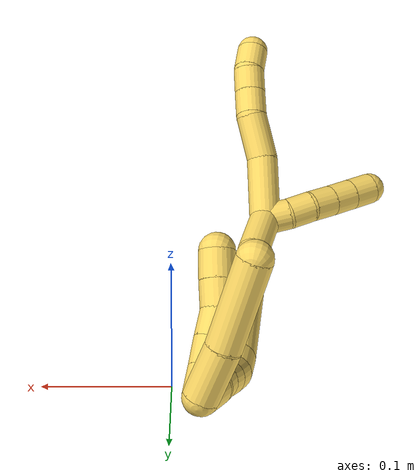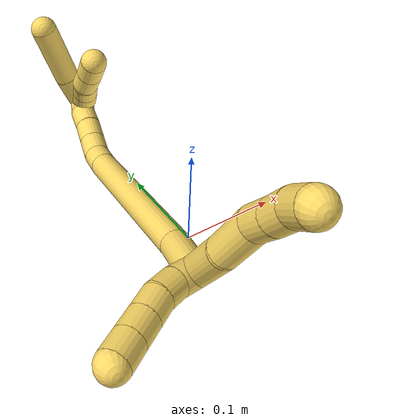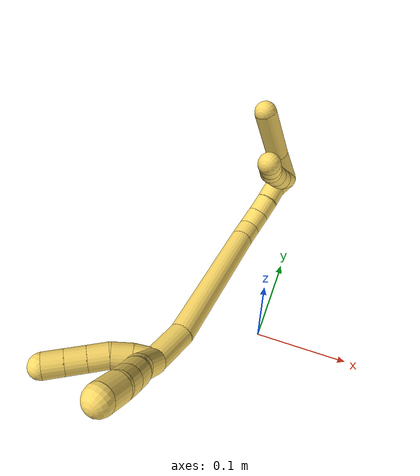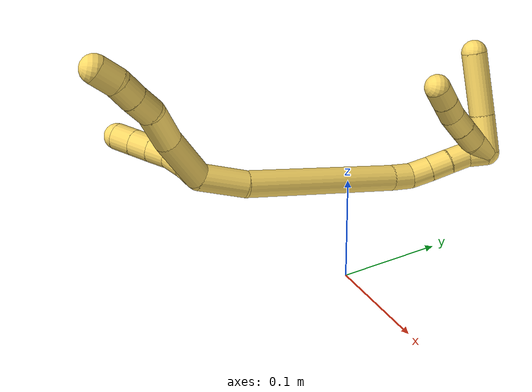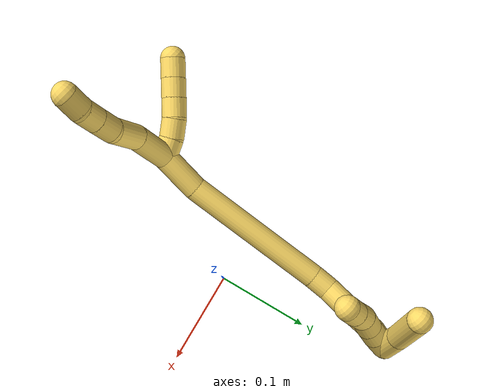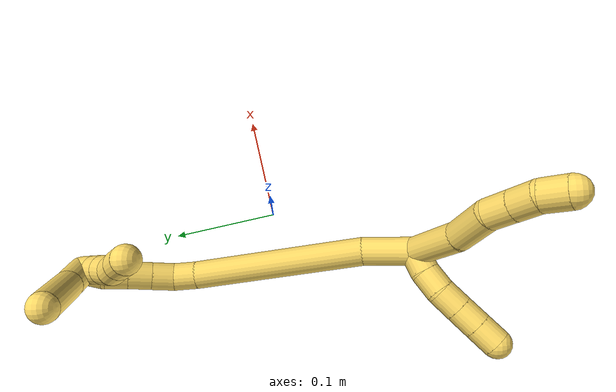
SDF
<sdf version="1.7">
 <world name="default">
  <model name="5">
   <static>0</static>
   <link name="5">
    <collision name="collision-cylinder-e_1_2_8">
     <pose>-0.016226 0.005915 0.018624 -0.307511 -0.692985 0.111796</pose>
     <geometry><cylinder><radius>0.0125</radius><length>0.050798</length></cylinder></geometry>
     <surface>
      <friction><ode><mu>1.16</mu><mu2>1.16</mu2><slip1>0</slip1><slip2>0</slip2></ode></friction>
      <contact><ode><kp>1e+06</kp><kd>1</kd><max_vel>0</max_vel><min_depth>0.001</min_depth></ode></contact>
     </surface>
    </collision>
    <visual name="visual-cylinder-e_1_2_8">
     <pose>-0.016226 0.005915 0.018624 -0.307511 -0.692985 0.111796</pose>
     <geometry><cylinder><radius>0.0125</radius><length>0.050798</length></cylinder></geometry>
     <material><ambient>1 0.858824 0.4 1</ambient></material>
    </visual>
    <collision name="collision-cylinder-e_2_8_9">
     <pose>-0.045039 0.019481 0.04834 -0.603842 -0.751377 0.244454</pose>
     <geometry><cylinder><radius>0.0125</radius><length>0.03688</length></cylinder></geometry>
     <surface>
      <friction><ode><mu>1.16</mu><mu2>1.16</mu2><slip1>0</slip1><slip2>0</slip2></ode></friction>
      <contact><ode><kp>1e+06</kp><kd>1</kd><max_vel>0</max_vel><min_depth>0.001</min_depth></ode></contact>
     </surface>
    </collision>
    <visual name="visual-cylinder-e_2_8_9">
     <pose>-0.045039 0.019481 0.04834 -0.603842 -0.751377 0.244454</pose>
     <geometry><cylinder><radius>0.0125</radius><length>0.03688</length></cylinder></geometry>
     <material><ambient>1 0.858824 0.4 1</ambient></material>
    </visual>
    <collision name="collision-cylinder-e_3_9_10">
     <pose>-0.063111 0.029819 0.06822 -0.296701 -0.537959 0.082347</pose>
     <geometry><cylinder><radius>0.0125</radius><length>0.021403</length></cylinder></geometry>
     <surface>
      <friction><ode><mu>1.16</mu><mu2>1.16</mu2><slip1>0</slip1><slip2>0</slip2></ode></friction>
      <contact><ode><kp>1e+06</kp><kd>1</kd><max_vel>0</max_vel><min_depth>0.001</min_depth></ode></contact>
     </surface>
    </collision>
    <visual name="visual-cylinder-e_3_9_10">
     <pose>-0.063111 0.029819 0.06822 -0.296701 -0.537959 0.082347</pose>
     <geometry><cylinder><radius>0.0125</radius><length>0.021403</length></cylinder></geometry>
     <material><ambient>1 0.858824 0.4 1</ambient></material>
    </visual>
    <collision name="collision-cylinder-e_4_10_11">
     <pose>-0.074265 0.034955 0.084964 -0.298643 -0.598118 0.092697</pose>
     <geometry><cylinder><radius>0.0125</radius><length>0.020144</length></cylinder></geometry>
     <surface>
      <friction><ode><mu>1.16</mu><mu2>1.16</mu2><slip1>0</slip1><slip2>0</slip2></ode></friction>
      <contact><ode><kp>1e+06</kp><kd>1</kd><max_vel>0</max_vel><min_depth>0.001</min_depth></ode></contact>
     </surface>
    </collision>
    <visual name="visual-cylinder-e_4_10_11">
     <pose>-0.074265 0.034955 0.084964 -0.298643 -0.598118 0.092697</pose>
     <geometry><cylinder><radius>0.0125</radius><length>0.020144</length></cylinder></geometry>
     <material><ambient>1 0.858824 0.4 1</ambient></material>
    </visual>
    <collision name="collision-cylinder-e_5_11_6">
     <pose>-0.083907 0.037995 0.102499 -0.061692 -0.392211 0.012259</pose>
     <geometry><cylinder><radius>0.0125</radius><length>0.020775</length></cylinder></geometry>
     <surface>
      <friction><ode><mu>1.16</mu><mu2>1.16</mu2><slip1>0</slip1><slip2>0</slip2></ode></friction>
      <contact><ode><kp>1e+06</kp><kd>1</kd><max_vel>0</max_vel><min_depth>0.001</min_depth></ode></contact>
     </surface>
    </collision>
    <visual name="visual-cylinder-e_5_11_6">
     <pose>-0.083907 0.037995 0.102499 -0.061692 -0.392211 0.012259</pose>
     <geometry><cylinder><radius>0.0125</radius><length>0.020775</length></cylinder></geometry>
     <material><ambient>1 0.858824 0.4 1</ambient></material>
    </visual>
    <collision name="collision-cylinder-e_1_2_12">
     <pose>-0.001819 -0.008919 0.00414 1.13619 -0.182903 -0.116938</pose>
     <geometry><cylinder><radius>0.0125</radius><length>0.02</length></cylinder></geometry>
     <surface>
      <friction><ode><mu>1.16</mu><mu2>1.16</mu2><slip1>0</slip1><slip2>0</slip2></ode></friction>
      <contact><ode><kp>1e+06</kp><kd>1</kd><max_vel>0</max_vel><min_depth>0.001</min_depth></ode></contact>
     </surface>
    </collision>
    <visual name="visual-cylinder-e_1_2_12">
     <pose>-0.001819 -0.008919 0.00414 1.13619 -0.182903 -0.116938</pose>
     <geometry><cylinder><radius>0.0125</radius><length>0.02</length></cylinder></geometry>
     <material><ambient>1 0.858824 0.4 1</ambient></material>
    </visual>
    <collision name="collision-cylinder-e_2_12_13">
     <pose>-0.005026 -0.025827 0.014133 0.938491 -0.139309 -0.070717</pose>
     <geometry><cylinder><radius>0.0125</radius><length>0.02</length></cylinder></geometry>
     <surface>
      <friction><ode><mu>1.16</mu><mu2>1.16</mu2><slip1>0</slip1><slip2>0</slip2></ode></friction>
      <contact><ode><kp>1e+06</kp><kd>1</kd><max_vel>0</max_vel><min_depth>0.001</min_depth></ode></contact>
     </surface>
    </collision>
    <visual name="visual-cylinder-e_2_12_13">
     <pose>-0.005026 -0.025827 0.014133 0.938491 -0.139309 -0.070717</pose>
     <geometry><cylinder><radius>0.0125</radius><length>0.02</length></cylinder></geometry>
     <material><ambient>1 0.858824 0.4 1</ambient></material>
    </visual>
    <collision name="collision-cylinder-e_3_13_14">
     <pose>-0.006117 -0.041066 0.026867 0.811586 0.029814 0.01281</pose>
     <geometry><cylinder><radius>0.0125</radius><length>0.02</length></cylinder></geometry>
     <surface>
      <friction><ode><mu>1.16</mu><mu2>1.16</mu2><slip1>0</slip1><slip2>0</slip2></ode></friction>
      <contact><ode><kp>1e+06</kp><kd>1</kd><max_vel>0</max_vel><min_depth>0.001</min_depth></ode></contact>
     </surface>
    </collision>
    <visual name="visual-cylinder-e_3_13_14">
     <pose>-0.006117 -0.041066 0.026867 0.811586 0.029814 0.01281</pose>
     <geometry><cylinder><radius>0.0125</radius><length>0.02</length></cylinder></geometry>
     <material><ambient>1 0.858824 0.4 1</ambient></material>
    </visual>
    <collision name="collision-cylinder-e_4_14_15">
     <pose>-0.005711 -0.055502 0.040701 0.801757 0.010771 0.004565</pose>
     <geometry><cylinder><radius>0.0125</radius><length>0.02</length></cylinder></geometry>
     <surface>
      <friction><ode><mu>1.16</mu><mu2>1.16</mu2><slip1>0</slip1><slip2>0</slip2></ode></friction>
      <contact><ode><kp>1e+06</kp><kd>1</kd><max_vel>0</max_vel><min_depth>0.001</min_depth></ode></contact>
     </surface>
    </collision>
    <visual name="visual-cylinder-e_4_14_15">
     <pose>-0.005711 -0.055502 0.040701 0.801757 0.010771 0.004565</pose>
     <geometry><cylinder><radius>0.0125</radius><length>0.02</length></cylinder></geometry>
     <material><ambient>1 0.858824 0.4 1</ambient></material>
    </visual>
    <collision name="collision-cylinder-e_5_15_5">
     <pose>-0.005488 -0.069852 0.05463 0.798789 0.011549 0.004874</pose>
     <geometry><cylinder><radius>0.0125</radius><length>0.02</length></cylinder></geometry>
     <surface>
      <friction><ode><mu>1.16</mu><mu2>1.16</mu2><slip1>0</slip1><slip2>0</slip2></ode></friction>
      <contact><ode><kp>1e+06</kp><kd>1</kd><max_vel>0</max_vel><min_depth>0.001</min_depth></ode></contact>
     </surface>
    </collision>
    <visual name="visual-cylinder-e_5_15_5">
     <pose>-0.005488 -0.069852 0.05463 0.798789 0.011549 0.004874</pose>
     <geometry><cylinder><radius>0.0125</radius><length>0.02</length></cylinder></geometry>
     <material><ambient>1 0.858824 0.4 1</ambient></material>
    </visual>
    <collision name="collision-cylinder-e_1_2_16">
     <pose>0.000295 0.000847 -0.02223 -3.10351 0.013258 -0.670016</pose>
     <geometry><cylinder><radius>0.0125</radius><length>0.044496</length></cylinder></geometry>
     <surface>
      <friction><ode><mu>1.16</mu><mu2>1.16</mu2><slip1>0</slip1><slip2>0</slip2></ode></friction>
      <contact><ode><kp>1e+06</kp><kd>1</kd><max_vel>0</max_vel><min_depth>0.001</min_depth></ode></contact>
     </surface>
    </collision>
    <visual name="visual-cylinder-e_1_2_16">
     <pose>0.000295 0.000847 -0.02223 -3.10351 0.013258 -0.670016</pose>
     <geometry><cylinder><radius>0.0125</radius><length>0.044496</length></cylinder></geometry>
     <material><ambient>1 0.858824 0.4 1</ambient></material>
    </visual>
    <collision name="collision-cylinder-e_2_16_17">
     <pose>-0.009654 -0.005755 -0.119571 3.04274 -0.134896 -1.87749</pose>
     <geometry><cylinder><radius>0.0125</radius><length>0.152343</length></cylinder></geometry>
     <surface>
      <friction><ode><mu>1.16</mu><mu2>1.16</mu2><slip1>0</slip1><slip2>0</slip2></ode></friction>
      <contact><ode><kp>1e+06</kp><kd>1</kd><max_vel>0</max_vel><min_depth>0.001</min_depth></ode></contact>
     </surface>
    </collision>
    <visual name="visual-cylinder-e_2_16_17">
     <pose>-0.009654 -0.005755 -0.119571 3.04274 -0.134896 -1.87749</pose>
     <geometry><cylinder><radius>0.0125</radius><length>0.152343</length></cylinder></geometry>
     <material><ambient>1 0.858824 0.4 1</ambient></material>
    </visual>
    <collision name="collision-cylinder-e_3_17_18">
     <pose>-0.022081 -0.013611 -0.205005 3.10217 -0.208241 -2.76866</pose>
     <geometry><cylinder><radius>0.0125</radius><length>0.02112</length></cylinder></geometry>
     <surface>
      <friction><ode><mu>1.16</mu><mu2>1.16</mu2><slip1>0</slip1><slip2>0</slip2></ode></friction>
      <contact><ode><kp>1e+06</kp><kd>1</kd><max_vel>0</max_vel><min_depth>0.001</min_depth></ode></contact>
     </surface>
    </collision>
    <visual name="visual-cylinder-e_3_17_18">
     <pose>-0.022081 -0.013611 -0.205005 3.10217 -0.208241 -2.76866</pose>
     <geometry><cylinder><radius>0.0125</radius><length>0.02112</length></cylinder></geometry>
     <material><ambient>1 0.858824 0.4 1</ambient></material>
    </visual>
    <collision name="collision-cylinder-e_4_18_19">
     <pose>-0.029395 -0.012941 -0.224282 -3.02184 -0.517285 2.69595</pose>
     <geometry><cylinder><radius>0.0125</radius><length>0.020749</length></cylinder></geometry>
     <surface>
      <friction><ode><mu>1.16</mu><mu2>1.16</mu2><slip1>0</slip1><slip2>0</slip2></ode></friction>
      <contact><ode><kp>1e+06</kp><kd>1</kd><max_vel>0</max_vel><min_depth>0.001</min_depth></ode></contact>
     </surface>
    </collision>
    <visual name="visual-cylinder-e_4_18_19">
     <pose>-0.029395 -0.012941 -0.224282 -3.02184 -0.517285 2.69595</pose>
     <geometry><cylinder><radius>0.0125</radius><length>0.020749</length></cylinder></geometry>
     <material><ambient>1 0.858824 0.4 1</ambient></material>
    </visual>
    <collision name="collision-cylinder-e_5_19_20">
     <pose>-0.040144 -0.010694 -0.242014 -3.00908 -0.565275 2.69234</pose>
     <geometry><cylinder><radius>0.0125</radius><length>0.020978</length></cylinder></geometry>
     <surface>
      <friction><ode><mu>1.16</mu><mu2>1.16</mu2><slip1>0</slip1><slip2>0</slip2></ode></friction>
      <contact><ode><kp>1e+06</kp><kd>1</kd><max_vel>0</max_vel><min_depth>0.001</min_depth></ode></contact>
     </surface>
    </collision>
    <visual name="visual-cylinder-e_5_19_20">
     <pose>-0.040144 -0.010694 -0.242014 -3.00908 -0.565275 2.69234</pose>
     <geometry><cylinder><radius>0.0125</radius><length>0.020978</length></cylinder></geometry>
     <material><ambient>1 0.858824 0.4 1</ambient></material>
    </visual>
    <collision name="collision-cylinder-e_6_20_21">
     <pose>-0.050782 -0.009011 -0.259469 -3.08265 -0.523793 2.92253</pose>
     <geometry><cylinder><radius>0.0125</radius><length>0.020072</length></cylinder></geometry>
     <surface>
      <friction><ode><mu>1.16</mu><mu2>1.16</mu2><slip1>0</slip1><slip2>0</slip2></ode></friction>
      <contact><ode><kp>1e+06</kp><kd>1</kd><max_vel>0</max_vel><min_depth>0.001</min_depth></ode></contact>
     </surface>
    </collision>
    <visual name="visual-cylinder-e_6_20_21">
     <pose>-0.050782 -0.009011 -0.259469 -3.08265 -0.523793 2.92253</pose>
     <geometry><cylinder><radius>0.0125</radius><length>0.020072</length></cylinder></geometry>
     <material><ambient>1 0.858824 0.4 1</ambient></material>
    </visual>
    <collision name="collision-cylinder-e_7_21_1">
     <pose>-0.059049 -0.005781 -0.277337 -2.85402 -0.326664 1.69991</pose>
     <geometry><cylinder><radius>0.0125</radius><length>0.020242</length></cylinder></geometry>
     <surface>
      <friction><ode><mu>1.16</mu><mu2>1.16</mu2><slip1>0</slip1><slip2>0</slip2></ode></friction>
      <contact><ode><kp>1e+06</kp><kd>1</kd><max_vel>0</max_vel><min_depth>0.001</min_depth></ode></contact>
     </surface>
    </collision>
    <visual name="visual-cylinder-e_7_21_1">
     <pose>-0.059049 -0.005781 -0.277337 -2.85402 -0.326664 1.69991</pose>
     <geometry><cylinder><radius>0.0125</radius><length>0.020242</length></cylinder></geometry>
     <material><ambient>1 0.858824 0.4 1</ambient></material>
    </visual>
    <collision name="collision-cylinder-e_1_1_22">
     <pose>-0.066276 -0.00279 -0.277359 -0.029631 -0.40925 0.00615</pose>
     <geometry><cylinder><radius>0.0125</radius><length>0.02</length></cylinder></geometry>
     <surface>
      <friction><ode><mu>1.16</mu><mu2>1.16</mu2><slip1>0</slip1><slip2>0</slip2></ode></friction>
      <contact><ode><kp>1e+06</kp><kd>1</kd><max_vel>0</max_vel><min_depth>0.001</min_depth></ode></contact>
     </surface>
    </collision>
    <visual name="visual-cylinder-e_1_1_22">
     <pose>-0.066276 -0.00279 -0.277359 -0.029631 -0.40925 0.00615</pose>
     <geometry><cylinder><radius>0.0125</radius><length>0.02</length></cylinder></geometry>
     <material><ambient>1 0.858824 0.4 1</ambient></material>
    </visual>
    <collision name="collision-cylinder-e_2_22_23">
     <pose>-0.075921 -0.002322 -0.259951 -0.023849 -0.602276 0.007407</pose>
     <geometry><cylinder><radius>0.0125</radius><length>0.02</length></cylinder></geometry>
     <surface>
      <friction><ode><mu>1.16</mu><mu2>1.16</mu2><slip1>0</slip1><slip2>0</slip2></ode></friction>
      <contact><ode><kp>1e+06</kp><kd>1</kd><max_vel>0</max_vel><min_depth>0.001</min_depth></ode></contact>
     </surface>
    </collision>
    <visual name="visual-cylinder-e_2_22_23">
     <pose>-0.075921 -0.002322 -0.259951 -0.023849 -0.602276 0.007407</pose>
     <geometry><cylinder><radius>0.0125</radius><length>0.02</length></cylinder></geometry>
     <material><ambient>1 0.858824 0.4 1</ambient></material>
    </visual>
    <collision name="collision-cylinder-e_3_23_24">
     <pose>-0.087398 -0.002249 -0.243576 0.015282 -0.620207 -0.004897</pose>
     <geometry><cylinder><radius>0.0125</radius><length>0.02</length></cylinder></geometry>
     <surface>
      <friction><ode><mu>1.16</mu><mu2>1.16</mu2><slip1>0</slip1><slip2>0</slip2></ode></friction>
      <contact><ode><kp>1e+06</kp><kd>1</kd><max_vel>0</max_vel><min_depth>0.001</min_depth></ode></contact>
     </surface>
    </collision>
    <visual name="visual-cylinder-e_3_23_24">
     <pose>-0.087398 -0.002249 -0.243576 0.015282 -0.620207 -0.004897</pose>
     <geometry><cylinder><radius>0.0125</radius><length>0.02</length></cylinder></geometry>
     <material><ambient>1 0.858824 0.4 1</ambient></material>
    </visual>
    <collision name="collision-cylinder-e_4_24_25">
     <pose>-0.099515 0.00011 -0.228086 -0.325708 -0.682215 0.116522</pose>
     <geometry><cylinder><radius>0.0125</radius><length>0.02</length></cylinder></geometry>
     <surface>
      <friction><ode><mu>1.16</mu><mu2>1.16</mu2><slip1>0</slip1><slip2>0</slip2></ode></friction>
      <contact><ode><kp>1e+06</kp><kd>1</kd><max_vel>0</max_vel><min_depth>0.001</min_depth></ode></contact>
     </surface>
    </collision>
    <visual name="visual-cylinder-e_4_24_25">
     <pose>-0.099515 0.00011 -0.228086 -0.325708 -0.682215 0.116522</pose>
     <geometry><cylinder><radius>0.0125</radius><length>0.02</length></cylinder></geometry>
     <material><ambient>1 0.858824 0.4 1</ambient></material>
    </visual>
    <collision name="collision-cylinder-e_5_25_4">
     <pose>-0.112245 0.004695 -0.213363 -0.277789 -0.697731 0.101611</pose>
     <geometry><cylinder><radius>0.0125</radius><length>0.02</length></cylinder></geometry>
     <surface>
      <friction><ode><mu>1.16</mu><mu2>1.16</mu2><slip1>0</slip1><slip2>0</slip2></ode></friction>
      <contact><ode><kp>1e+06</kp><kd>1</kd><max_vel>0</max_vel><min_depth>0.001</min_depth></ode></contact>
     </surface>
    </collision>
    <visual name="visual-cylinder-e_5_25_4">
     <pose>-0.112245 0.004695 -0.213363 -0.277789 -0.697731 0.101611</pose>
     <geometry><cylinder><radius>0.0125</radius><length>0.02</length></cylinder></geometry>
     <material><ambient>1 0.858824 0.4 1</ambient></material>
    </visual>
    <collision name="collision-cylinder-e_1_1_26">
     <pose>-0.079726 -0.008015 -0.280934 0.72465 -1.16578 -0.489799</pose>
     <geometry><cylinder><radius>0.0125</radius><length>0.037927</length></cylinder></geometry>
     <surface>
      <friction><ode><mu>1.16</mu><mu2>1.16</mu2><slip1>0</slip1><slip2>0</slip2></ode></friction>
      <contact><ode><kp>1e+06</kp><kd>1</kd><max_vel>0</max_vel><min_depth>0.001</min_depth></ode></contact>
     </surface>
    </collision>
    <visual name="visual-cylinder-e_1_1_26">
     <pose>-0.079726 -0.008015 -0.280934 0.72465 -1.16578 -0.489799</pose>
     <geometry><cylinder><radius>0.0125</radius><length>0.037927</length></cylinder></geometry>
     <material><ambient>1 0.858824 0.4 1</ambient></material>
    </visual>
    <collision name="collision-cylinder-e_2_26_3">
     <pose>-0.125655 -0.018545 -0.264388 0.471042 -1.16366 -0.313122</pose>
     <geometry><cylinder><radius>0.0125</radius><length>0.062073</length></cylinder></geometry>
     <surface>
      <friction><ode><mu>1.16</mu><mu2>1.16</mu2><slip1>0</slip1><slip2>0</slip2></ode></friction>
      <contact><ode><kp>1e+06</kp><kd>1</kd><max_vel>0</max_vel><min_depth>0.001</min_depth></ode></contact>
     </surface>
    </collision>
    <visual name="visual-cylinder-e_2_26_3">
     <pose>-0.125655 -0.018545 -0.264388 0.471042 -1.16366 -0.313122</pose>
     <geometry><cylinder><radius>0.0125</radius><length>0.062073</length></cylinder></geometry>
     <material><ambient>1 0.858824 0.4 1</ambient></material>
    </visual>
    <collision name="collision-sphere-3">
     <pose>-0.154155 -0.024123 -0.253437 0 -0 0</pose>
     <geometry><sphere><radius>0.0125</radius></sphere></geometry>
     <surface>
      <friction><ode><mu>1.16</mu><mu2>1.16</mu2><slip1>0</slip1><slip2>0</slip2></ode></friction>
      <contact><ode><kp>1e+06</kp><kd>1</kd><max_vel>0</max_vel><min_depth>0.001</min_depth></ode></contact>
     </surface>
    </collision>
    <visual name="visual-sphere-3">
     <pose>-0.154155 -0.024123 -0.253437 0 -0 0</pose>
     <geometry><sphere><radius>0.0125</radius></sphere></geometry>
     <material><ambient>1 0.858824 0.4 1</ambient></material>
    </visual>
    <collision name="collision-sphere-26">
     <pose>-0.097156 -0.012968 -0.27534 0 -0 0</pose>
     <geometry><sphere><radius>0.0125</radius></sphere></geometry>
     <surface>
      <friction><ode><mu>1.16</mu><mu2>1.16</mu2><slip1>0</slip1><slip2>0</slip2></ode></friction>
      <contact><ode><kp>1e+06</kp><kd>1</kd><max_vel>0</max_vel><min_depth>0.001</min_depth></ode></contact>
     </surface>
    </collision>
    <visual name="visual-sphere-26">
     <pose>-0.097156 -0.012968 -0.27534 0 -0 0</pose>
     <geometry><sphere><radius>0.0125</radius></sphere></geometry>
     <material><ambient>1 0.858824 0.4 1</ambient></material>
    </visual>
    <collision name="collision-sphere-4">
     <pose>-0.11867 0.006796 -0.205993 0 -0 0</pose>
     <geometry><sphere><radius>0.0125</radius></sphere></geometry>
     <surface>
      <friction><ode><mu>1.16</mu><mu2>1.16</mu2><slip1>0</slip1><slip2>0</slip2></ode></friction>
      <contact><ode><kp>1e+06</kp><kd>1</kd><max_vel>0</max_vel><min_depth>0.001</min_depth></ode></contact>
     </surface>
    </collision>
    <visual name="visual-sphere-4">
     <pose>-0.11867 0.006796 -0.205993 0 -0 0</pose>
     <geometry><sphere><radius>0.0125</radius></sphere></geometry>
     <material><ambient>1 0.858824 0.4 1</ambient></material>
    </visual>
    <collision name="collision-sphere-25">
     <pose>-0.10582 0.002593 -0.220732 0 -0 0</pose>
     <geometry><sphere><radius>0.0125</radius></sphere></geometry>
     <surface>
      <friction><ode><mu>1.16</mu><mu2>1.16</mu2><slip1>0</slip1><slip2>0</slip2></ode></friction>
      <contact><ode><kp>1e+06</kp><kd>1</kd><max_vel>0</max_vel><min_depth>0.001</min_depth></ode></contact>
     </surface>
    </collision>
    <visual name="visual-sphere-25">
     <pose>-0.10582 0.002593 -0.220732 0 -0 0</pose>
     <geometry><sphere><radius>0.0125</radius></sphere></geometry>
     <material><ambient>1 0.858824 0.4 1</ambient></material>
    </visual>
    <collision name="collision-sphere-24">
     <pose>-0.09321 -0.002374 -0.235439 0 -0 0</pose>
     <geometry><sphere><radius>0.0125</radius></sphere></geometry>
     <surface>
      <friction><ode><mu>1.16</mu><mu2>1.16</mu2><slip1>0</slip1><slip2>0</slip2></ode></friction>
      <contact><ode><kp>1e+06</kp><kd>1</kd><max_vel>0</max_vel><min_depth>0.001</min_depth></ode></contact>
     </surface>
    </collision>
    <visual name="visual-sphere-24">
     <pose>-0.09321 -0.002374 -0.235439 0 -0 0</pose>
     <geometry><sphere><radius>0.0125</radius></sphere></geometry>
     <material><ambient>1 0.858824 0.4 1</ambient></material>
    </visual>
    <collision name="collision-sphere-23">
     <pose>-0.081586 -0.002125 -0.251713 0 -0 0</pose>
     <geometry><sphere><radius>0.0125</radius></sphere></geometry>
     <surface>
      <friction><ode><mu>1.16</mu><mu2>1.16</mu2><slip1>0</slip1><slip2>0</slip2></ode></friction>
      <contact><ode><kp>1e+06</kp><kd>1</kd><max_vel>0</max_vel><min_depth>0.001</min_depth></ode></contact>
     </surface>
    </collision>
    <visual name="visual-sphere-23">
     <pose>-0.081586 -0.002125 -0.251713 0 -0 0</pose>
     <geometry><sphere><radius>0.0125</radius></sphere></geometry>
     <material><ambient>1 0.858824 0.4 1</ambient></material>
    </visual>
    <collision name="collision-sphere-22">
     <pose>-0.070255 -0.002518 -0.268189 0 -0 0</pose>
     <geometry><sphere><radius>0.0125</radius></sphere></geometry>
     <surface>
      <friction><ode><mu>1.16</mu><mu2>1.16</mu2><slip1>0</slip1><slip2>0</slip2></ode></friction>
      <contact><ode><kp>1e+06</kp><kd>1</kd><max_vel>0</max_vel><min_depth>0.001</min_depth></ode></contact>
     </surface>
    </collision>
    <visual name="visual-sphere-22">
     <pose>-0.070255 -0.002518 -0.268189 0 -0 0</pose>
     <geometry><sphere><radius>0.0125</radius></sphere></geometry>
     <material><ambient>1 0.858824 0.4 1</ambient></material>
    </visual>
    <collision name="collision-sphere-1">
     <pose>-0.062297 -0.003062 -0.286529 0 -0 0</pose>
     <geometry><sphere><radius>0.0125</radius></sphere></geometry>
     <surface>
      <friction><ode><mu>1.16</mu><mu2>1.16</mu2><slip1>0</slip1><slip2>0</slip2></ode></friction>
      <contact><ode><kp>1e+06</kp><kd>1</kd><max_vel>0</max_vel><min_depth>0.001</min_depth></ode></contact>
     </surface>
    </collision>
    <visual name="visual-sphere-1">
     <pose>-0.062297 -0.003062 -0.286529 0 -0 0</pose>
     <geometry><sphere><radius>0.0125</radius></sphere></geometry>
     <material><ambient>1 0.858824 0.4 1</ambient></material>
    </visual>
    <collision name="collision-sphere-21">
     <pose>-0.055801 -0.008499 -0.268144 0 -0 0</pose>
     <geometry><sphere><radius>0.0125</radius></sphere></geometry>
     <surface>
      <friction><ode><mu>1.16</mu><mu2>1.16</mu2><slip1>0</slip1><slip2>0</slip2></ode></friction>
      <contact><ode><kp>1e+06</kp><kd>1</kd><max_vel>0</max_vel><min_depth>0.001</min_depth></ode></contact>
     </surface>
    </collision>
    <visual name="visual-sphere-21">
     <pose>-0.055801 -0.008499 -0.268144 0 -0 0</pose>
     <geometry><sphere><radius>0.0125</radius></sphere></geometry>
     <material><ambient>1 0.858824 0.4 1</ambient></material>
    </visual>
    <collision name="collision-sphere-6">
     <pose>-0.087878 0.038587 0.11208 0 -0 0</pose>
     <geometry><sphere><radius>0.0125</radius></sphere></geometry>
     <surface>
      <friction><ode><mu>1.16</mu><mu2>1.16</mu2><slip1>0</slip1><slip2>0</slip2></ode></friction>
      <contact><ode><kp>1e+06</kp><kd>1</kd><max_vel>0</max_vel><min_depth>0.001</min_depth></ode></contact>
     </surface>
    </collision>
    <visual name="visual-sphere-6">
     <pose>-0.087878 0.038587 0.11208 0 -0 0</pose>
     <geometry><sphere><radius>0.0125</radius></sphere></geometry>
     <material><ambient>1 0.858824 0.4 1</ambient></material>
    </visual>
    <collision name="collision-sphere-11">
     <pose>-0.079937 0.037403 0.092919 0 -0 0</pose>
     <geometry><sphere><radius>0.0125</radius></sphere></geometry>
     <surface>
      <friction><ode><mu>1.16</mu><mu2>1.16</mu2><slip1>0</slip1><slip2>0</slip2></ode></friction>
      <contact><ode><kp>1e+06</kp><kd>1</kd><max_vel>0</max_vel><min_depth>0.001</min_depth></ode></contact>
     </surface>
    </collision>
    <visual name="visual-sphere-11">
     <pose>-0.079937 0.037403 0.092919 0 -0 0</pose>
     <geometry><sphere><radius>0.0125</radius></sphere></geometry>
     <material><ambient>1 0.858824 0.4 1</ambient></material>
    </visual>
    <collision name="collision-sphere-10">
     <pose>-0.068594 0.032506 0.077009 0 -0 0</pose>
     <geometry><sphere><radius>0.0125</radius></sphere></geometry>
     <surface>
      <friction><ode><mu>1.16</mu><mu2>1.16</mu2><slip1>0</slip1><slip2>0</slip2></ode></friction>
      <contact><ode><kp>1e+06</kp><kd>1</kd><max_vel>0</max_vel><min_depth>0.001</min_depth></ode></contact>
     </surface>
    </collision>
    <visual name="visual-sphere-10">
     <pose>-0.068594 0.032506 0.077009 0 -0 0</pose>
     <geometry><sphere><radius>0.0125</radius></sphere></geometry>
     <material><ambient>1 0.858824 0.4 1</ambient></material>
    </visual>
    <collision name="collision-sphere-9">
     <pose>-0.057628 0.027132 0.059432 0 -0 0</pose>
     <geometry><sphere><radius>0.0125</radius></sphere></geometry>
     <surface>
      <friction><ode><mu>1.16</mu><mu2>1.16</mu2><slip1>0</slip1><slip2>0</slip2></ode></friction>
      <contact><ode><kp>1e+06</kp><kd>1</kd><max_vel>0</max_vel><min_depth>0.001</min_depth></ode></contact>
     </surface>
    </collision>
    <visual name="visual-sphere-9">
     <pose>-0.057628 0.027132 0.059432 0 -0 0</pose>
     <geometry><sphere><radius>0.0125</radius></sphere></geometry>
     <material><ambient>1 0.858824 0.4 1</ambient></material>
    </visual>
    <collision name="collision-sphere-2">
     <geometry><sphere><radius>0.0125</radius></sphere></geometry>
     <surface>
      <friction><ode><mu>1.16</mu><mu2>1.16</mu2><slip1>0</slip1><slip2>0</slip2></ode></friction>
      <contact><ode><kp>1e+06</kp><kd>1</kd><max_vel>0</max_vel><min_depth>0.001</min_depth></ode></contact>
     </surface>
    </collision>
    <visual name="visual-sphere-2">
     <geometry><sphere><radius>0.0125</radius></sphere></geometry>
     <material><ambient>1 0.858824 0.4 1</ambient></material>
    </visual>
    <collision name="collision-sphere-19">
     <pose>-0.034525 -0.011864 -0.233234 0 -0 0</pose>
     <geometry><sphere><radius>0.0125</radius></sphere></geometry>
     <surface>
      <friction><ode><mu>1.16</mu><mu2>1.16</mu2><slip1>0</slip1><slip2>0</slip2></ode></friction>
      <contact><ode><kp>1e+06</kp><kd>1</kd><max_vel>0</max_vel><min_depth>0.001</min_depth></ode></contact>
     </surface>
    </collision>
    <visual name="visual-sphere-19">
     <pose>-0.034525 -0.011864 -0.233234 0 -0 0</pose>
     <geometry><sphere><radius>0.0125</radius></sphere></geometry>
     <material><ambient>1 0.858824 0.4 1</ambient></material>
    </visual>
    <collision name="collision-sphere-8">
     <pose>-0.032451 0.011829 0.037247 0 -0 0</pose>
     <geometry><sphere><radius>0.0125</radius></sphere></geometry>
     <surface>
      <friction><ode><mu>1.16</mu><mu2>1.16</mu2><slip1>0</slip1><slip2>0</slip2></ode></friction>
      <contact><ode><kp>1e+06</kp><kd>1</kd><max_vel>0</max_vel><min_depth>0.001</min_depth></ode></contact>
     </surface>
    </collision>
    <visual name="visual-sphere-8">
     <pose>-0.032451 0.011829 0.037247 0 -0 0</pose>
     <geometry><sphere><radius>0.0125</radius></sphere></geometry>
     <material><ambient>1 0.858824 0.4 1</ambient></material>
    </visual>
    <collision name="collision-sphere-12">
     <pose>-0.003638 -0.017838 0.008281 0 -0 0</pose>
     <geometry><sphere><radius>0.0125</radius></sphere></geometry>
     <surface>
      <friction><ode><mu>1.16</mu><mu2>1.16</mu2><slip1>0</slip1><slip2>0</slip2></ode></friction>
      <contact><ode><kp>1e+06</kp><kd>1</kd><max_vel>0</max_vel><min_depth>0.001</min_depth></ode></contact>
     </surface>
    </collision>
    <visual name="visual-sphere-12">
     <pose>-0.003638 -0.017838 0.008281 0 -0 0</pose>
     <geometry><sphere><radius>0.0125</radius></sphere></geometry>
     <material><ambient>1 0.858824 0.4 1</ambient></material>
    </visual>
    <collision name="collision-sphere-13">
     <pose>-0.006415 -0.033815 0.019986 0 -0 0</pose>
     <geometry><sphere><radius>0.0125</radius></sphere></geometry>
     <surface>
      <friction><ode><mu>1.16</mu><mu2>1.16</mu2><slip1>0</slip1><slip2>0</slip2></ode></friction>
      <contact><ode><kp>1e+06</kp><kd>1</kd><max_vel>0</max_vel><min_depth>0.001</min_depth></ode></contact>
     </surface>
    </collision>
    <visual name="visual-sphere-13">
     <pose>-0.006415 -0.033815 0.019986 0 -0 0</pose>
     <geometry><sphere><radius>0.0125</radius></sphere></geometry>
     <material><ambient>1 0.858824 0.4 1</ambient></material>
    </visual>
    <collision name="collision-sphere-14">
     <pose>-0.005819 -0.048316 0.033747 0 -0 0</pose>
     <geometry><sphere><radius>0.0125</radius></sphere></geometry>
     <surface>
      <friction><ode><mu>1.16</mu><mu2>1.16</mu2><slip1>0</slip1><slip2>0</slip2></ode></friction>
      <contact><ode><kp>1e+06</kp><kd>1</kd><max_vel>0</max_vel><min_depth>0.001</min_depth></ode></contact>
     </surface>
    </collision>
    <visual name="visual-sphere-14">
     <pose>-0.005819 -0.048316 0.033747 0 -0 0</pose>
     <geometry><sphere><radius>0.0125</radius></sphere></geometry>
     <material><ambient>1 0.858824 0.4 1</ambient></material>
    </visual>
    <collision name="collision-sphere-15">
     <pose>-0.005603 -0.062687 0.047655 0 -0 0</pose>
     <geometry><sphere><radius>0.0125</radius></sphere></geometry>
     <surface>
      <friction><ode><mu>1.16</mu><mu2>1.16</mu2><slip1>0</slip1><slip2>0</slip2></ode></friction>
      <contact><ode><kp>1e+06</kp><kd>1</kd><max_vel>0</max_vel><min_depth>0.001</min_depth></ode></contact>
     </surface>
    </collision>
    <visual name="visual-sphere-15">
     <pose>-0.005603 -0.062687 0.047655 0 -0 0</pose>
     <geometry><sphere><radius>0.0125</radius></sphere></geometry>
     <material><ambient>1 0.858824 0.4 1</ambient></material>
    </visual>
    <collision name="collision-sphere-5">
     <pose>-0.005372 -0.077016 0.061606 0 -0 0</pose>
     <geometry><sphere><radius>0.0125</radius></sphere></geometry>
     <surface>
      <friction><ode><mu>1.16</mu><mu2>1.16</mu2><slip1>0</slip1><slip2>0</slip2></ode></friction>
      <contact><ode><kp>1e+06</kp><kd>1</kd><max_vel>0</max_vel><min_depth>0.001</min_depth></ode></contact>
     </surface>
    </collision>
    <visual name="visual-sphere-5">
     <pose>-0.005372 -0.077016 0.061606 0 -0 0</pose>
     <geometry><sphere><radius>0.0125</radius></sphere></geometry>
     <material><ambient>1 0.858824 0.4 1</ambient></material>
    </visual>
    <collision name="collision-sphere-16">
     <pose>0.00059 0.001694 -0.04446 0 -0 0</pose>
     <geometry><sphere><radius>0.0125</radius></sphere></geometry>
     <surface>
      <friction><ode><mu>1.16</mu><mu2>1.16</mu2><slip1>0</slip1><slip2>0</slip2></ode></friction>
      <contact><ode><kp>1e+06</kp><kd>1</kd><max_vel>0</max_vel><min_depth>0.001</min_depth></ode></contact>
     </surface>
    </collision>
    <visual name="visual-sphere-16">
     <pose>0.00059 0.001694 -0.04446 0 -0 0</pose>
     <geometry><sphere><radius>0.0125</radius></sphere></geometry>
     <material><ambient>1 0.858824 0.4 1</ambient></material>
    </visual>
    <collision name="collision-sphere-17">
     <pose>-0.019898 -0.013204 -0.194682 0 -0 0</pose>
     <geometry><sphere><radius>0.0125</radius></sphere></geometry>
     <surface>
      <friction><ode><mu>1.16</mu><mu2>1.16</mu2><slip1>0</slip1><slip2>0</slip2></ode></friction>
      <contact><ode><kp>1e+06</kp><kd>1</kd><max_vel>0</max_vel><min_depth>0.001</min_depth></ode></contact>
     </surface>
    </collision>
    <visual name="visual-sphere-17">
     <pose>-0.019898 -0.013204 -0.194682 0 -0 0</pose>
     <geometry><sphere><radius>0.0125</radius></sphere></geometry>
     <material><ambient>1 0.858824 0.4 1</ambient></material>
    </visual>
    <collision name="collision-sphere-18">
     <pose>-0.024264 -0.014018 -0.215329 0 -0 0</pose>
     <geometry><sphere><radius>0.0125</radius></sphere></geometry>
     <surface>
      <friction><ode><mu>1.16</mu><mu2>1.16</mu2><slip1>0</slip1><slip2>0</slip2></ode></friction>
      <contact><ode><kp>1e+06</kp><kd>1</kd><max_vel>0</max_vel><min_depth>0.001</min_depth></ode></contact>
     </surface>
    </collision>
    <visual name="visual-sphere-18">
     <pose>-0.024264 -0.014018 -0.215329 0 -0 0</pose>
     <geometry><sphere><radius>0.0125</radius></sphere></geometry>
     <material><ambient>1 0.858824 0.4 1</ambient></material>
    </visual>
    <collision name="collision-sphere-20">
     <pose>-0.045762 -0.009523 -0.250794 0 -0 0</pose>
     <geometry><sphere><radius>0.0125</radius></sphere></geometry>
     <surface>
      <friction><ode><mu>1.16</mu><mu2>1.16</mu2><slip1>0</slip1><slip2>0</slip2></ode></friction>
      <contact><ode><kp>1e+06</kp><kd>1</kd><max_vel>0</max_vel><min_depth>0.001</min_depth></ode></contact>
     </surface>
    </collision>
    <visual name="visual-sphere-20">
     <pose>-0.045762 -0.009523 -0.250794 0 -0 0</pose>
     <geometry><sphere><radius>0.0125</radius></sphere></geometry>
     <material><ambient>1 0.858824 0.4 1</ambient></material>
    </visual>
    <inertial>
     <pose>-0.043733 -0.005728 -0.113015 0 -0 0</pose>
     <mass>0.75</mass>
     <inertia>
      <ixx>-0.000359</ixx>
      <ixy>0</ixy>
      <ixz>0</ixz>
      <iyy>-0.000138</iyy>
      <iyz>0</iyz>
      <izz>0.000121</izz>
     </inertia>
    </inertial>
   </link>
   <pose>-0.073641 -0.109678 0.098839 0.408503 1.24412 -1.35558</pose>
  </model>
 </world>
</sdf>
